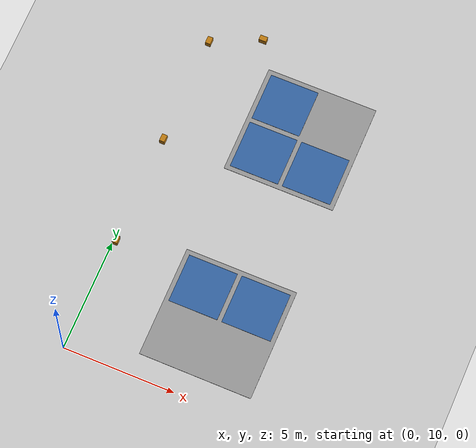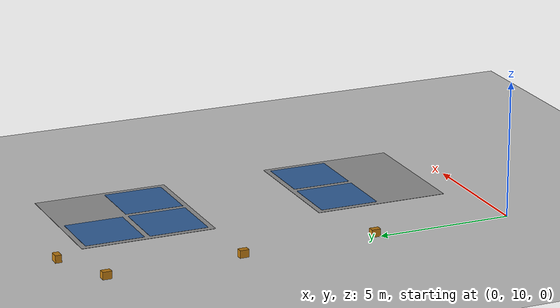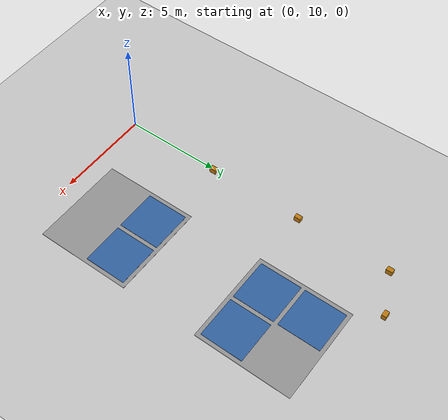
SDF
<sdf version="1.6">
 <world name="default">
  <model name="ground_plane">
   <static>1</static>
   <link name="link">
    <collision name="collision">
     <geometry><plane><normal>0 0 1</normal><size>100 100</size></plane></geometry>
     <surface>
      <contact><collide_bitmask>65535</collide_bitmask></contact>
      <friction><ode><mu>100</mu><mu2>50</mu2></ode></friction>
     </surface>
    </collision>
    <visual name="visual">
     <cast_shadows>0</cast_shadows>
     <geometry><plane><normal>0 0 1</normal><size>100 100</size></plane></geometry>
     <material>
      <script><uri>file://media/materials/scripts/gazebo.material</uri><name>Gazebo/Grey</name></script>
     </material>
    </visual>
   </link>
  </model>
  <model name="cardboard_marker_clone_clone_clone">
   <link name="link">
    <inertial>
     <mass>1</mass>
     <inertia>
      <ixx>0.166667</ixx>
      <ixy>0</ixy>
      <ixz>0</ixz>
      <iyy>0.166667</iyy>
      <iyz>0</iyz>
      <izz>0.166667</izz>
     </inertia>
    </inertial>
    <visual name="visual">
     <geometry><box><size>0.335 0.232 0.28</size></box></geometry>
     <material>
      <script><name>Gazebo/Grey</name><uri>file://media/materials/scripts/gazebo.material</uri></script>
      <shader type="vertex"><normal_map>__default__</normal_map></shader>
      <ambient>0.757 0.49 0.067 1</ambient>
      <diffuse>0.757 0.49 0.067 1</diffuse>
      <specular>0.757 0.49 0.067 1</specular>
      <emissive>0 0 0 1</emissive>
     </material>
    </visual>
    <collision name="collision">
     <geometry><box><size>0.335 0.232 0.28</size></box></geometry>
     <surface>
      <friction>
       <ode><mu>1</mu><mu2>1</mu2><fdir1>0 0 0</fdir1><slip1>0</slip1><slip2>0</slip2></ode>
       <torsional>
        <coefficient>1</coefficient>
        <patch_radius>0</patch_radius>
        <surface_radius>0</surface_radius>
        <use_patch_radius>1</use_patch_radius>
        <ode><slip>0</slip></ode>
       </torsional>
      </friction>
      <bounce><restitution_coefficient>0</restitution_coefficient><threshold>1e+06</threshold></bounce>
      <contact>
       <collide_without_contact>0</collide_without_contact>
       <collide_without_contact_bitmask>1</collide_without_contact_bitmask>
       <collide_bitmask>1</collide_bitmask>
       <ode>
        <soft_cfm>0</soft_cfm>
        <soft_erp>0.2</soft_erp>
        <kp>1e+13</kp>
        <kd>1</kd>
        <max_vel>0.01</max_vel>
        <min_depth>0</min_depth>
       </ode>
       <bullet>
        <split_impulse>1</split_impulse>
        <split_impulse_penetration_threshold>-0.01</split_impulse_penetration_threshold>
        <soft_cfm>0</soft_cfm>
        <soft_erp>0.2</soft_erp>
        <kp>1e+13</kp>
        <kd>1</kd>
       </bullet>
      </contact>
     </surface>
    </collision>
   </link>
   <static>1</static>
   <pose>0.116 15.1675 0.14 0 0 -1.5708</pose>
  </model>
  <model name="cardboard_marker_clone_clone_clone_clone">
   <link name="link">
    <inertial>
     <mass>1</mass>
     <inertia>
      <ixx>0.166667</ixx>
      <ixy>0</ixy>
      <ixz>0</ixz>
      <iyy>0.166667</iyy>
      <iyz>0</iyz>
      <izz>0.166667</izz>
     </inertia>
    </inertial>
    <visual name="visual">
     <geometry><box><size>0.335 0.232 0.28</size></box></geometry>
     <material>
      <script><name>Gazebo/Grey</name><uri>file://media/materials/scripts/gazebo.material</uri></script>
      <shader type="vertex"><normal_map>__default__</normal_map></shader>
      <ambient>0.757 0.49 0.067 1</ambient>
      <diffuse>0.757 0.49 0.067 1</diffuse>
      <specular>0.757 0.49 0.067 1</specular>
      <emissive>0 0 0 1</emissive>
     </material>
    </visual>
    <collision name="collision">
     <geometry><box><size>0.335 0.232 0.28</size></box></geometry>
     <surface>
      <friction>
       <ode><mu>1</mu><mu2>1</mu2><fdir1>0 0 0</fdir1><slip1>0</slip1><slip2>0</slip2></ode>
       <torsional>
        <coefficient>1</coefficient>
        <patch_radius>0</patch_radius>
        <surface_radius>0</surface_radius>
        <use_patch_radius>1</use_patch_radius>
        <ode><slip>0</slip></ode>
       </torsional>
      </friction>
      <bounce><restitution_coefficient>0</restitution_coefficient><threshold>1e+06</threshold></bounce>
      <contact>
       <collide_without_contact>0</collide_without_contact>
       <collide_without_contact_bitmask>1</collide_without_contact_bitmask>
       <collide_bitmask>1</collide_bitmask>
       <ode>
        <soft_cfm>0</soft_cfm>
        <soft_erp>0.2</soft_erp>
        <kp>1e+13</kp>
        <kd>1</kd>
        <max_vel>0.01</max_vel>
        <min_depth>0</min_depth>
       </ode>
       <bullet>
        <split_impulse>1</split_impulse>
        <split_impulse_penetration_threshold>-0.01</split_impulse_penetration_threshold>
        <soft_cfm>0</soft_cfm>
        <soft_erp>0.2</soft_erp>
        <kp>1e+13</kp>
        <kd>1</kd>
       </bullet>
      </contact>
     </surface>
    </collision>
   </link>
   <static>1</static>
   <pose>0.116 20.1675 0.14 0 0 -1.5708</pose>
  </model>
  <model name="cardboard_marker_clone_clone_clone_clone_clone">
   <link name="link">
    <inertial>
     <mass>1</mass>
     <inertia>
      <ixx>0.166667</ixx>
      <ixy>0</ixy>
      <ixz>0</ixz>
      <iyy>0.166667</iyy>
      <iyz>0</iyz>
      <izz>0.166667</izz>
     </inertia>
    </inertial>
    <visual name="visual">
     <geometry><box><size>0.335 0.232 0.28</size></box></geometry>
     <material>
      <script><name>Gazebo/Grey</name><uri>file://media/materials/scripts/gazebo.material</uri></script>
      <shader type="vertex"><normal_map>__default__</normal_map></shader>
      <ambient>0.757 0.49 0.067 1</ambient>
      <diffuse>0.757 0.49 0.067 1</diffuse>
      <specular>0.757 0.49 0.067 1</specular>
      <emissive>0 0 0 1</emissive>
     </material>
    </visual>
    <collision name="collision">
     <geometry><box><size>0.335 0.232 0.28</size></box></geometry>
     <surface>
      <friction>
       <ode><mu>1</mu><mu2>1</mu2><fdir1>0 0 0</fdir1><slip1>0</slip1><slip2>0</slip2></ode>
       <torsional>
        <coefficient>1</coefficient>
        <patch_radius>0</patch_radius>
        <surface_radius>0</surface_radius>
        <use_patch_radius>1</use_patch_radius>
        <ode><slip>0</slip></ode>
       </torsional>
      </friction>
      <bounce><restitution_coefficient>0</restitution_coefficient><threshold>1e+06</threshold></bounce>
      <contact>
       <collide_without_contact>0</collide_without_contact>
       <collide_without_contact_bitmask>1</collide_without_contact_bitmask>
       <collide_bitmask>1</collide_bitmask>
       <ode>
        <soft_cfm>0</soft_cfm>
        <soft_erp>0.2</soft_erp>
        <kp>1e+13</kp>
        <kd>1</kd>
        <max_vel>0.01</max_vel>
        <min_depth>0</min_depth>
       </ode>
       <bullet>
        <split_impulse>1</split_impulse>
        <split_impulse_penetration_threshold>-0.01</split_impulse_penetration_threshold>
        <soft_cfm>0</soft_cfm>
        <soft_erp>0.2</soft_erp>
        <kp>1e+13</kp>
        <kd>1</kd>
       </bullet>
      </contact>
     </surface>
    </collision>
   </link>
   <static>1</static>
   <pose>0.116 25.1675 0.14 0 0 -1.5708</pose>
  </model>
  <model name="cardboard_marker_clone_clone_clone_clone_clone_clone_clone_clone_clone_clone_0">
   <link name="link">
    <inertial>
     <mass>1</mass>
     <inertia>
      <ixx>0.166667</ixx>
      <ixy>0</ixy>
      <ixz>0</ixz>
      <iyy>0.166667</iyy>
      <iyz>0</iyz>
      <izz>0.166667</izz>
     </inertia>
    </inertial>
    <visual name="visual">
     <geometry><box><size>0.335 0.232 0.28</size></box></geometry>
     <material>
      <script><name>Gazebo/Grey</name><uri>file://media/materials/scripts/gazebo.material</uri></script>
      <shader type="vertex"><normal_map>__default__</normal_map></shader>
      <ambient>0.757 0.49 0.067 1</ambient>
      <diffuse>0.757 0.49 0.067 1</diffuse>
      <specular>0.757 0.49 0.067 1</specular>
      <emissive>0 0 0 1</emissive>
     </material>
    </visual>
    <collision name="collision">
     <geometry><box><size>0.335 0.232 0.28</size></box></geometry>
     <surface>
      <friction>
       <ode><mu>1</mu><mu2>1</mu2><fdir1>0 0 0</fdir1><slip1>0</slip1><slip2>0</slip2></ode>
       <torsional>
        <coefficient>1</coefficient>
        <patch_radius>0</patch_radius>
        <surface_radius>0</surface_radius>
        <use_patch_radius>1</use_patch_radius>
        <ode><slip>0</slip></ode>
       </torsional>
      </friction>
      <bounce><restitution_coefficient>0</restitution_coefficient><threshold>1e+06</threshold></bounce>
      <contact>
       <collide_without_contact>0</collide_without_contact>
       <collide_without_contact_bitmask>1</collide_without_contact_bitmask>
       <collide_bitmask>1</collide_bitmask>
       <ode>
        <soft_cfm>0</soft_cfm>
        <soft_erp>0.2</soft_erp>
        <kp>1e+13</kp>
        <kd>1</kd>
        <max_vel>0.01</max_vel>
        <min_depth>0</min_depth>
       </ode>
       <bullet>
        <split_impulse>1</split_impulse>
        <split_impulse_penetration_threshold>-0.01</split_impulse_penetration_threshold>
        <soft_cfm>0</soft_cfm>
        <soft_erp>0.2</soft_erp>
        <kp>1e+13</kp>
        <kd>1</kd>
       </bullet>
      </contact>
     </surface>
    </collision>
   </link>
   <static>1</static>
   <pose>2.2525 26.164 0.14 0 0 -3.14158</pose>
  </model>
  <model name="square_court_clone">
   <link name="link">
    <inertial>
     <mass>1</mass>
     <inertia>
      <ixx>0.166667</ixx>
      <ixy>0</ixy>
      <ixz>0</ixz>
      <iyy>0.166667</iyy>
      <iyz>0</iyz>
      <izz>0.166667</izz>
     </inertia>
    </inertial>
    <visual name="visual">
     <geometry><box><size>5 5 0.01</size></box></geometry>
     <material>
      <script><name>Gazebo/Grey</name><uri>file://media/materials/scripts/gazebo.material</uri></script>
      <shader type="vertex"><normal_map>__default__</normal_map></shader>
      <ambient>0.933 0.933 0.925 1</ambient>
      <diffuse>0.933 0.933 0.925 1</diffuse>
      <specular>0.933 0.933 0.925 1</specular>
      <emissive>0.933 0.933 0.925 1</emissive>
     </material>
    </visual>
   </link>
   <static>1</static>
   <pose>5.5 13.5 0.005 0 -0 0</pose>
  </model>
  <model name="square_court_negative_clone_0_clone_0">
   <link name="link">
    <inertial>
     <mass>1</mass>
     <inertia>
      <ixx>0.166667</ixx>
      <ixy>0</ixy>
      <ixz>0</ixz>
      <iyy>0.166667</iyy>
      <iyz>0</iyz>
      <izz>0.166667</izz>
     </inertia>
    </inertial>
    <visual name="visual">
     <geometry><box><size>2.2 2.2 0.01</size></box></geometry>
     <material>
      <script><name>Gazebo/Grey</name><uri>file://media/materials/scripts/gazebo.material</uri></script>
      <shader type="vertex"><normal_map>__default__</normal_map></shader>
      <ambient>0.204 0.396 0.643 1</ambient>
      <diffuse>0.204 0.396 0.643 1</diffuse>
      <specular>0.204 0.396 0.643 1</specular>
      <emissive>0.204 0.396 0.643 1</emissive>
     </material>
    </visual>
   </link>
   <static>1</static>
   <pose>4.3 14.7 0.01 0 -0 0</pose>
  </model>
  <model name="square_court_negative_clone_0_clone_1">
   <link name="link">
    <inertial>
     <mass>1</mass>
     <inertia>
      <ixx>0.166667</ixx>
      <ixy>0</ixy>
      <ixz>0</ixz>
      <iyy>0.166667</iyy>
      <iyz>0</iyz>
      <izz>0.166667</izz>
     </inertia>
    </inertial>
    <visual name="visual">
     <geometry><box><size>2.2 2.2 0.01</size></box></geometry>
     <material>
      <script><name>Gazebo/Grey</name><uri>file://media/materials/scripts/gazebo.material</uri></script>
      <shader type="vertex"><normal_map>__default__</normal_map></shader>
      <ambient>0.204 0.396 0.643 1</ambient>
      <diffuse>0.204 0.396 0.643 1</diffuse>
      <specular>0.204 0.396 0.643 1</specular>
      <emissive>0.204 0.396 0.643 1</emissive>
     </material>
    </visual>
   </link>
   <static>1</static>
   <pose>6.7 14.7 0.01 0 -0 0</pose>
  </model>
  <model name="square_court_clone_0">
   <link name="link">
    <inertial>
     <mass>1</mass>
     <inertia>
      <ixx>0.166667</ixx>
      <ixy>0</ixy>
      <ixz>0</ixz>
      <iyy>0.166667</iyy>
      <iyz>0</iyz>
      <izz>0.166667</izz>
     </inertia>
    </inertial>
    <visual name="visual">
     <geometry><box><size>5 5 0.01</size></box></geometry>
     <material>
      <script><name>Gazebo/Grey</name><uri>file://media/materials/scripts/gazebo.material</uri></script>
      <shader type="vertex"><normal_map>__default__</normal_map></shader>
      <ambient>0.933 0.933 0.925 1</ambient>
      <diffuse>0.933 0.933 0.925 1</diffuse>
      <specular>0.933 0.933 0.925 1</specular>
      <emissive>0.933 0.933 0.925 1</emissive>
     </material>
    </visual>
   </link>
   <static>1</static>
   <pose>5.5 22.5 0.005 0 -0 0</pose>
  </model>
  <model name="square_court_negative_clone_0_clone_0_clone">
   <link name="link">
    <inertial>
     <mass>1</mass>
     <inertia>
      <ixx>0.166667</ixx>
      <ixy>0</ixy>
      <ixz>0</ixz>
      <iyy>0.166667</iyy>
      <iyz>0</iyz>
      <izz>0.166667</izz>
     </inertia>
    </inertial>
    <visual name="visual">
     <geometry><box><size>2.2 2.2 0.01</size></box></geometry>
     <material>
      <script><name>Gazebo/Grey</name><uri>file://media/materials/scripts/gazebo.material</uri></script>
      <shader type="vertex"><normal_map>__default__</normal_map></shader>
      <ambient>0.204 0.396 0.643 1</ambient>
      <diffuse>0.204 0.396 0.643 1</diffuse>
      <specular>0.204 0.396 0.643 1</specular>
      <emissive>0.204 0.396 0.643 1</emissive>
     </material>
    </visual>
   </link>
   <static>1</static>
   <pose>4.3 21.3 0.01 0 -0 0</pose>
  </model>
  <model name="square_court_negative_clone_0_clone_0_clone_0">
   <link name="link">
    <inertial>
     <mass>1</mass>
     <inertia>
      <ixx>0.166667</ixx>
      <ixy>0</ixy>
      <ixz>0</ixz>
      <iyy>0.166667</iyy>
      <iyz>0</iyz>
      <izz>0.166667</izz>
     </inertia>
    </inertial>
    <visual name="visual">
     <geometry><box><size>2.2 2.2 0.01</size></box></geometry>
     <material>
      <script><name>Gazebo/Grey</name><uri>file://media/materials/scripts/gazebo.material</uri></script>
      <shader type="vertex"><normal_map>__default__</normal_map></shader>
      <ambient>0.204 0.396 0.643 1</ambient>
      <diffuse>0.204 0.396 0.643 1</diffuse>
      <specular>0.204 0.396 0.643 1</specular>
      <emissive>0.204 0.396 0.643 1</emissive>
     </material>
    </visual>
   </link>
   <static>1</static>
   <pose>4.3 23.7 0.01 0 -0 0</pose>
  </model>
  <model name="square_court_negative_clone_0_clone_0_clone_2">
   <link name="link">
    <inertial>
     <mass>1</mass>
     <inertia>
      <ixx>0.166667</ixx>
      <ixy>0</ixy>
      <ixz>0</ixz>
      <iyy>0.166667</iyy>
      <iyz>0</iyz>
      <izz>0.166667</izz>
     </inertia>
    </inertial>
    <visual name="visual">
     <geometry><box><size>2.2 2.2 0.01</size></box></geometry>
     <material>
      <script><name>Gazebo/Grey</name><uri>file://media/materials/scripts/gazebo.material</uri></script>
      <shader type="vertex"><normal_map>__default__</normal_map></shader>
      <ambient>0.204 0.396 0.643 1</ambient>
      <diffuse>0.204 0.396 0.643 1</diffuse>
      <specular>0.204 0.396 0.643 1</specular>
      <emissive>0.204 0.396 0.643 1</emissive>
     </material>
    </visual>
   </link>
   <static>1</static>
   <pose>6.7 21.3 0.01 0 -0 0</pose>
  </model>
 </world>
</sdf>
